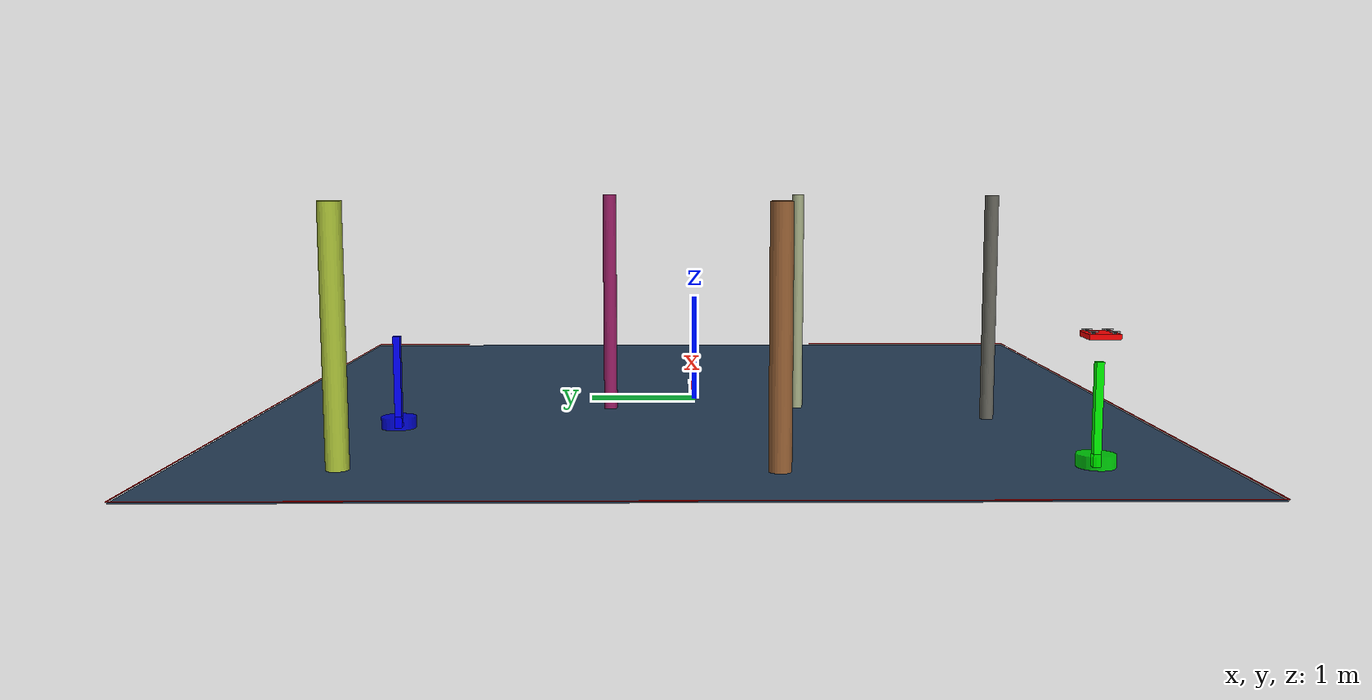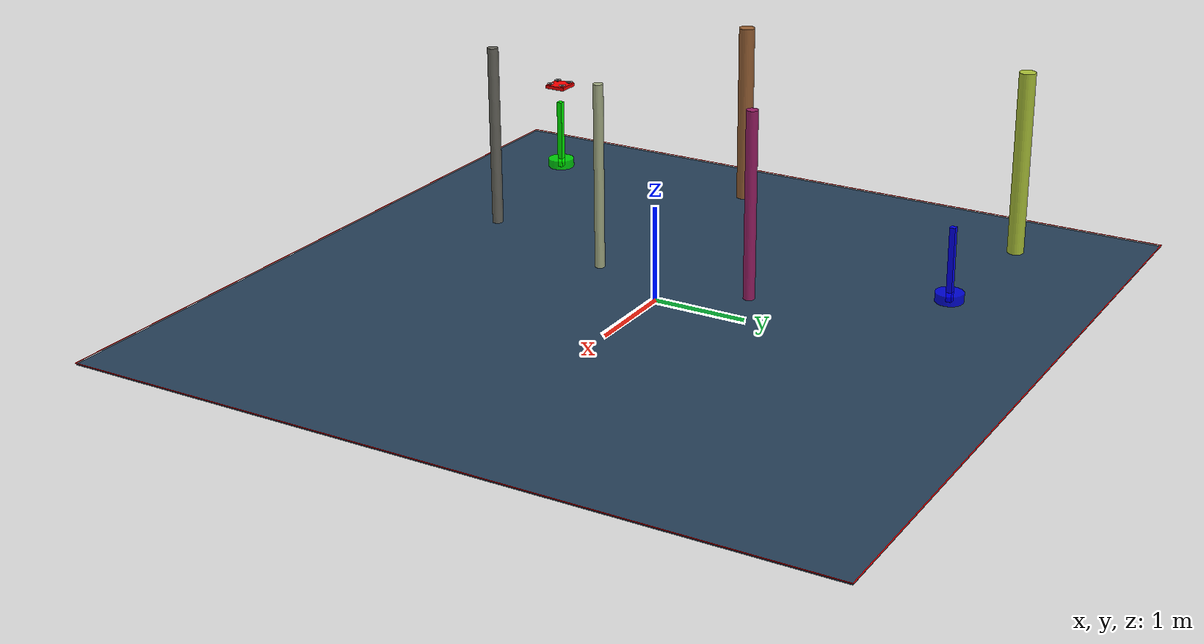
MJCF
<?xml version='1.0' encoding='utf-8'?>
<mujoco model="complex_uav_env">
  <compiler angle="degree" coordinate="local" inertiafromgeom="true" />
  <option integrator="RK4" timestep="0.01" />

  <visual>
    <headlight diffuse="0.6 0.6 0.6" ambient="0.3 0.3 0.3" />
    <rgba haze="0.15 0.25 0.35 1" />
    <global offwidth="2560" offheight="1440" />
  </visual>

  <asset>
    <texture type="skybox" builtin="gradient" rgb1="0.3 0.5 0.7" rgb2="0 0 0" width="512" height="3072" />
    <texture name="grid" type="2d" builtin="checker" rgb1="0.1 0.2 0.3" rgb2="0.2 0.3 0.4" width="512" height="512" />
    <material name="grid" texture="grid" texrepeat="1 1" />
  </asset>

  <worldbody>

    <geom name="ground" type="plane" size="4.0 4.0 0.1" material="grid" />
    <light name="light1" pos="0 0 4" dir="0 0 -1" diffuse="1 1 1" />

    <geom name="start_marker" type="cylinder" size="0.15 0.05" pos="-3.0 -3.0 0.05" rgba="0 1 0 0.8" />
    <geom name="start_pole" type="box" size="0.03 0.03 0.4" pos="-3.0 -3.0 0.4" rgba="0 1 0 1" />

    <geom name="goal_marker" type="cylinder" size="0.15 0.05" pos="-1.450591596464753 2.583310986402396 0.05" rgba="0 0 1 0.8" />
    <geom name="goal_pole" type="box" size="0.03 0.03 0.4" pos="-1.450591596464753 2.583310986402396 0.4" rgba="0 0 1 1" />

    <body name="chassis" pos="-3.0 -3.0 1.0">
      <joint type="free" name="root" />
      <geom type="box" size="0.12 0.12 0.02" rgba="1.0 0.0 0.0 1.0" mass="0.8" />

      <geom type="box" size="0.08 0.01 0.005" pos="0 0 0.01" rgba="0.3 0.3 0.3 1" />
      <geom type="box" size="0.01 0.08 0.005" pos="0 0 0.01" rgba="0.3 0.3 0.3 1" />

      <geom type="cylinder" size="0.015 0.02" pos="0.08 0.08 0.015" rgba="0.2 0.2 0.2 1" />
      <geom type="cylinder" size="0.015 0.02" pos="-0.08 0.08 0.015" rgba="0.2 0.2 0.2 1" />
      <geom type="cylinder" size="0.015 0.02" pos="0.08 -0.08 0.015" rgba="0.2 0.2 0.2 1" />
      <geom type="cylinder" size="0.015 0.02" pos="-0.08 -0.08 0.015" rgba="0.2 0.2 0.2 1" />

      <geom type="cylinder" size="0.04 0.002" pos="0.08 0.08 0.035" rgba="0.7 0.7 0.7 0.8" />
      <geom type="cylinder" size="0.04 0.002" pos="-0.08 0.08 0.035" rgba="0.7 0.7 0.7 0.8" />
      <geom type="cylinder" size="0.04 0.002" pos="0.08 -0.08 0.035" rgba="0.7 0.7 0.7 0.8" />
      <geom type="cylinder" size="0.04 0.002" pos="-0.08 -0.08 0.035" rgba="0.7 0.7 0.7 0.8" />

      <site name="motor1" pos="0.08 0.08 0" size="0.01" />
      <site name="motor2" pos="-0.08 0.08 0" size="0.01" />
      <site name="motor3" pos="0.08 -0.08 0" size="0.01" />
      <site name="motor4" pos="-0.08 -0.08 0" size="0.01" />
    </body>
    <geom name="test_obs_0" type="cylinder" size="0.061141349429887824 1.0" pos="-0.5146221791252684 0.7940498861068319 1.0" rgba="0.6018664499320721 0.11781040486738847 0.3983235133351618 1.0" />
    <geom name="test_obs_1" type="cylinder" size="0.0873680059403947 1.0" pos="-3.129526456679282 -0.607876914262404 1.0" rgba="0.6003118499676646 0.3826349512933238 0.20566823778795662 1.0" />
    <geom name="test_obs_2" type="cylinder" size="0.05952298578257226 1.0" pos="-1.0721001948610687 -2.6225412826815466 1.0" rgba="0.4021857609773182 0.39809020389181815 0.36361645194145964 1.0" />
    <geom name="test_obs_3" type="cylinder" size="0.08891934547125958 1.0" pos="-3.045254628334661 2.6952895436025455 1.0" rgba="0.6821729105897922 0.7735849227129733 0.22286479734396317 1.0" />
    <geom name="test_obs_4" type="cylinder" size="0.05302957279147928 1.0" pos="-0.5024481965707823 -0.9566774811538847 1.0" rgba="0.6526005793135574 0.6856187537133566 0.5286301987737582 1.0" />
  <geom name="boundary_north" type="box" size="4.0 0.005 0.002" pos="0 4.0 0.002" rgba="1.0 0.0 0.0 1.0" /><geom name="boundary_south" type="box" size="4.0 0.005 0.002" pos="0 -4.0 0.002" rgba="1.0 0.0 0.0 1.0" /><geom name="boundary_east" type="box" size="0.005 4.0 0.002" pos="4.0 0 0.002" rgba="1.0 0.0 0.0 1.0" /><geom name="boundary_west" type="box" size="0.005 4.0 0.002" pos="-4.0 0 0.002" rgba="1.0 0.0 0.0 1.0" /></worldbody>

  <actuator>
    <motor name="m1" gear="0 0 1 0 0 0" site="motor1" />
    <motor name="m2" gear="0 0 1 0 0 0" site="motor2" />
    <motor name="m3" gear="0 0 1 0 0 0" site="motor3" />
    <motor name="m4" gear="0 0 1 0 0 0" site="motor4" />
  </actuator>
</mujoco>
